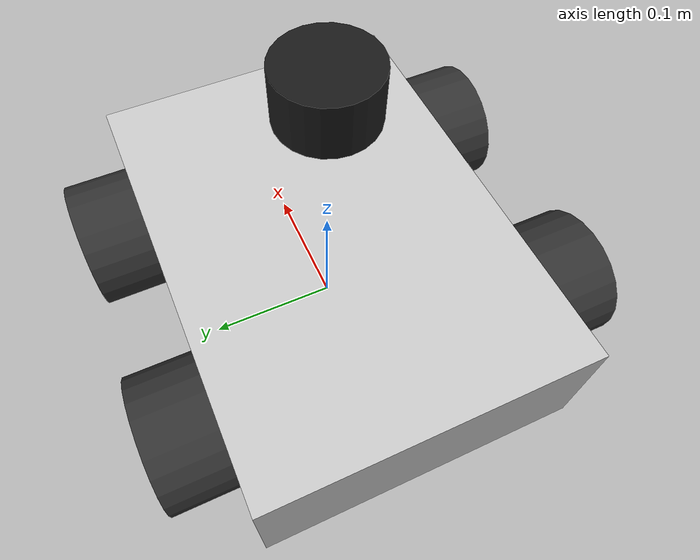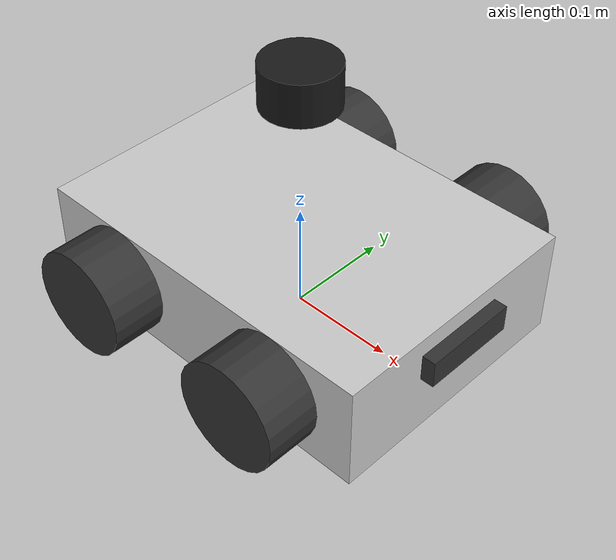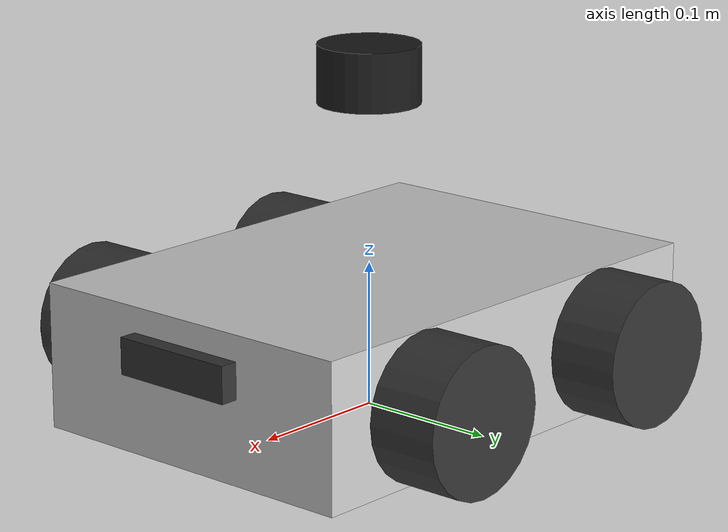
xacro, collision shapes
<?xml version="1.0"?>
<!-- urdf/robot.urdf.xacro -->
<robot xmlns:xacro="http://www.ros.org/wiki/xacro" name="orbibot">

  <!-- Robot Parameters -->
  <xacro:property name="PI" value="3.14159265359"/>

  <!-- Wheel specifications -->
  <xacro:property name="wheel_radius" value="0.05"/>           <!-- 100mm diameter = 50mm radius -->
  <xacro:property name="track_width" value="0.30"/>            <!-- Total left-right wheel separation -->
  <xacro:property name="wheelbase" value="0.18"/>              <!-- Total front-back wheel separation -->

  <!-- Base dimensions -->
  <xacro:property name="base_length" value="0.35"/>
  <xacro:property name="base_width" value="0.25"/>
  <xacro:property name="base_height" value="0.10"/>
  <xacro:property name="base_mass" value="6.0"/>

  <!-- Sensor positions -->
  <xacro:property name="lidar_height" value="0.18"/>
  <xacro:property name="camera_height" value="0.02"/>

  <!-- Inertia macros -->
  <xacro:macro name="box_inertia" params="m x y z">
    <inertia ixx="${m*(y*y+z*z)/12}" ixy="0" ixz="0"
             iyy="${m*(x*x+z*z)/12}" iyz="0"
             izz="${m*(x*x+y*y)/12}"/>
  </xacro:macro>

  <xacro:macro name="cylinder_inertia" params="m r h">
    <inertia ixx="${m*(3*r*r+h*h)/12}" ixy="0" ixz="0"
             iyy="${m*(3*r*r+h*h)/12}" iyz="0"
             izz="${m*r*r/2}"/>
  </xacro:macro>

  <!-- Base footprint -->
  <link name="base_footprint"/>

  <!-- Base joint -->
  <joint name="base_joint" type="fixed">
    <parent link="base_footprint"/>
    <child link="base_link"/>
    <origin xyz="0.0 0.0 ${wheel_radius}" rpy="0 0 0"/>
  </joint>

  <!-- Base link -->
  <link name="base_link">
    <visual>
      <origin xyz="0.0 0.0 0.0" rpy="0 0 0"/>
      <geometry>
        <box size="${base_length} ${base_width} ${base_height}"/>
      </geometry>
      <material name="chassis_material">
        <color rgba="0.8 0.8 0.8 1.0"/>
      </material>
    </visual>

    <collision>
      <origin xyz="0 0 0" rpy="0 0 0"/>
      <geometry>
        <box size="${base_length} ${base_width} ${base_height}"/>
      </geometry>
    </collision>

    <inertial>
      <origin xyz="0 0 0" rpy="0 0 0"/>
      <mass value="${base_mass}"/>
      <xacro:box_inertia m="${base_mass}" x="${base_length}" y="${base_width}" z="${base_height}"/>
    </inertial>
  </link>

  <!-- Mecanum wheel macro -->
  <xacro:macro name="mecanum_wheel" params="prefix x_pos y_pos rpy_val mesh_file">

    <!-- Wheel joint -->
    <joint name="wheel_${prefix}_joint" type="continuous">
      <parent link="base_link"/>
      <child link="wheel_${prefix}_link"/>
      <origin xyz="${x_pos} ${y_pos} 0.0" rpy="${rpy_val}"/>
      <axis xyz="0 0 1"/>
      <dynamics damping="0.1" friction="0.1"/>
    </joint>

    <!-- Wheel link -->
    <link name="wheel_${prefix}_link">
      <visual>
        <origin xyz="0 0 0" rpy="0 0 0"/>
        <geometry>
          <mesh filename="package://orbibot_description/meshes/${mesh_file}" scale="1.0 1.0 1.0"/>
        </geometry>
        <material name="wheel_material">
          <color rgba="0.2 0.2 0.2 1.0"/>
        </material>
      </visual>

      <collision>
        <origin xyz="0 0 0" rpy="0 0 0"/>
        <geometry>
          <cylinder length="0.05" radius="${wheel_radius}"/>
        </geometry>
      </collision>

      <inertial>
        <origin xyz="0 0 0" rpy="0 0 0"/>
        <mass value="0.5"/>
        <xacro:cylinder_inertia m="0.5" r="${wheel_radius}" h="0.05"/>
      </inertial>
    </link>

  </xacro:macro>

  <!-- Create all wheels using the macro - ordered to match hardware Motor1,2,3,4 -->
  <xacro:mecanum_wheel prefix="front_left"  x_pos="${wheelbase/2}"  y_pos="${track_width/2}"  rpy_val="-1.57 0 0" mesh_file="mechanical-wheel-FrontLeft-BackRight.stl"/>
  <xacro:mecanum_wheel prefix="rear_left"   x_pos="${-wheelbase/2}" y_pos="${track_width/2}"  rpy_val="-1.57 0 0" mesh_file="mechanical-wheel-FrontRight-BackLeft.stl"/>
  <xacro:mecanum_wheel prefix="front_right" x_pos="${wheelbase/2}"  y_pos="${-track_width/2}" rpy_val="1.57 0 0"  mesh_file="mechanical-wheel-FrontRight-BackLeft.stl"/>
  <xacro:mecanum_wheel prefix="rear_right"  x_pos="${-wheelbase/2}" y_pos="${-track_width/2}" rpy_val="1.57 0 0"  mesh_file="mechanical-wheel-FrontLeft-BackRight.stl"/>

  <!-- RPLIDAR A1 -->
  <joint name="lidar_joint" type="fixed">
    <parent link="base_link"/>
    <child link="lidar_link"/>
    <origin xyz="0.0 0.0 ${lidar_height}" rpy="0 0 0"/>
  </joint>

  <link name="lidar_link">
    <visual>
      <origin xyz="-0.03 0 -0.1" rpy="0 0 0"/>
      <geometry>
        <mesh filename="package://orbibot_description/meshes/RPLidar-A1.stl" scale="0.001 0.001 0.001"/>
      </geometry>
      <material name="lidar_material">
        <color rgba="0.1 0.1 0.1 1.0"/>
      </material>
    </visual>

    <collision>
      <origin xyz="0 0 0" rpy="0 0 0"/>
      <geometry>
        <cylinder radius="0.035" length="0.04"/>
      </geometry>
    </collision>

    <inertial>
      <origin xyz="0 0 0" rpy="0 0 0"/>
      <mass value="0.2"/>
      <xacro:cylinder_inertia m="0.2" r="0.035" h="0.04"/>
    </inertial>
  </link>

  <!-- Intel RealSense D435 -->
  <joint name="camera_joint" type="fixed">
    <parent link="base_link"/>
    <child link="camera_link"/>
    <origin xyz="${base_length/2} 0.0 ${camera_height}" rpy="0 0 0"/>
  </joint>

  <link name="camera_link">
    <visual>
      <origin xyz="0 0 0" rpy="0 0 0"/>
      <geometry>
        <box size="0.025 0.09 0.025"/>
      </geometry>
      <material name="camera_material">
        <color rgba="0.2 0.2 0.2 1.0"/>
      </material>
    </visual>

    <collision>
      <origin xyz="0 0 0" rpy="0 0 0"/>
      <geometry>
        <box size="0.025 0.09 0.025"/>
      </geometry>
    </collision>

    <inertial>
      <origin xyz="0 0 0" rpy="0 0 0"/>
      <mass value="0.072"/>
      <xacro:box_inertia m="0.072" x="0.025" y="0.09" z="0.025"/>
    </inertial>
  </link>

  <!-- Camera optical frames for RealSense -->
  <joint name="camera_color_joint" type="fixed">
    <parent link="camera_link"/>
    <child link="camera_color_frame"/>
    <origin xyz="0.0 -0.046 0.004" rpy="0 0 0"/>
  </joint>
  <link name="camera_color_frame"/>

  <joint name="camera_color_optical_joint" type="fixed">
    <parent link="camera_color_frame"/>
    <child link="camera_color_optical_frame"/>
    <origin xyz="0 0 0" rpy="${-PI/2} 0 ${-PI/2}"/>
  </joint>
  <link name="camera_color_optical_frame"/>

  <joint name="camera_depth_joint" type="fixed">
    <parent link="camera_link"/>
    <child link="camera_depth_frame"/>
    <origin xyz="0.0 -0.0175 0.004" rpy="0 0 0"/>
  </joint>
  <link name="camera_depth_frame"/>

  <joint name="camera_depth_optical_joint" type="fixed">
    <parent link="camera_depth_frame"/>
    <child link="camera_depth_optical_frame"/>
    <origin xyz="0 0 0" rpy="${-PI/2} 0 ${-PI/2}"/>
  </joint>
  <link name="camera_depth_optical_frame"/>

  <!-- IMU sensor -->
  <joint name="imu_joint" type="fixed">
    <parent link="base_link"/>
    <child link="imu_link"/>
    <origin xyz="0.0 0.0 0.02" rpy="0 0 0"/>
  </joint>

  <link name="imu_link">
    <visual>
      <origin xyz="0 0 0" rpy="0 0 0"/>
      <geometry>
        <box size="0.015 0.015 0.005"/>
      </geometry>
      <material name="imu_material">
        <color rgba="0.0 0.8 0.0 1.0"/>
      </material>
    </visual>

    <collision>
      <origin xyz="0 0 0" rpy="0 0 0"/>
      <geometry>
        <box size="0.015 0.015 0.005"/>
      </geometry>
    </collision>

    <inertial>
      <origin xyz="0 0 0" rpy="0 0 0"/>
      <mass value="0.005"/>
      <xacro:box_inertia m="0.005" x="0.015" y="0.015" z="0.005"/>
    </inertial>
  </link>

</robot>
